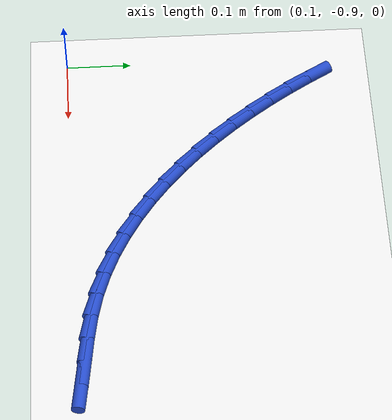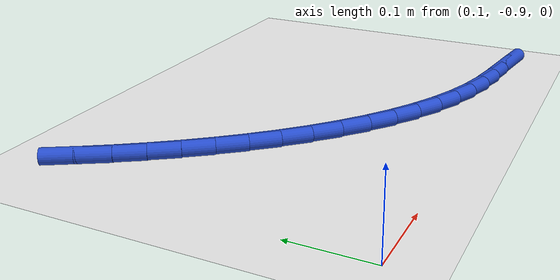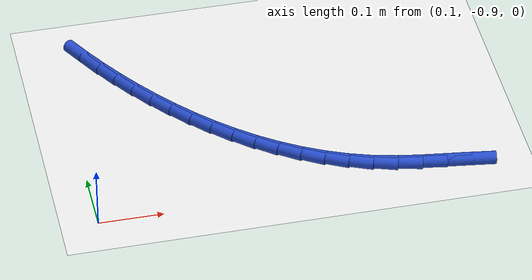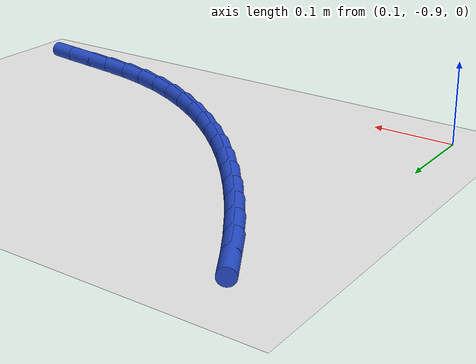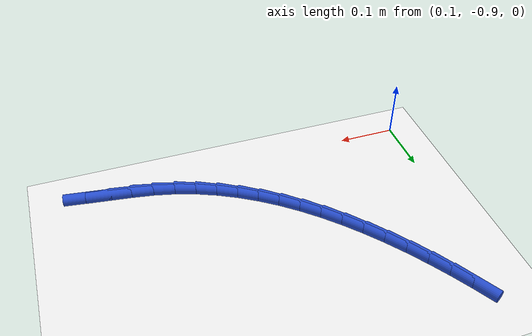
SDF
<sdf version="1.6">
 <world name="default">
  <model name="ground_plane">
   <static>1</static>
   <link name="link">
    <collision name="collision">
     <geometry><plane><normal>0 0 1</normal><size>100 100</size></plane></geometry>
     <surface><friction><ode><mu>100</mu><mu2>50</mu2></ode></friction></surface>
    </collision>
    <visual name="visual">
     <cast_shadows>0</cast_shadows>
     <geometry><plane><normal>0 0 1</normal><size>100 100</size></plane></geometry>
     <material>
      <script><uri>file://media/materials/scripts/gazebo.material</uri><name>Gazebo/WhiteGlow</name></script>
     </material>
    </visual>
   </link>
  </model>
  <model name="line">
   <link name="link_197">
    <pose>0.6735484048971435 -0.8865345235779443 0.01 0 1.57 -0.13792116968464777</pose>
    <collision name="collision">
     <geometry><cylinder><radius>0.01</radius><length>0.08</length></cylinder></geometry>
    </collision>
    <visual name="visual">
     <material>
      <script><name>Gazebo/Blue</name><uri>file://media/materials/scripts/gazebo.material</uri></script>
     </material>
     <geometry><cylinder><radius>0.01</radius><length>0.08</length></cylinder></geometry>
    </visual>
   </link>
   <link name="link_198">
    <pose>0.6367582350109195 -0.8814279597347524 0.01 0 1.57 -0.1325945253674707</pose>
    <collision name="collision">
     <geometry><cylinder><radius>0.01</radius><length>0.08</length></cylinder></geometry>
    </collision>
    <visual name="visual">
     <material>
      <script><name>Gazebo/Blue</name><uri>file://media/materials/scripts/gazebo.material</uri></script>
     </material>
     <geometry><cylinder><radius>0.01</radius><length>0.08</length></cylinder></geometry>
    </visual>
   </link>
   <link name="link_199">
    <pose>0.5997831364971848 -0.8764963286564301 0.01 0 1.57 -0.16704243983490943</pose>
    <collision name="collision">
     <geometry><cylinder><radius>0.01</radius><length>0.08</length></cylinder></geometry>
    </collision>
    <visual name="visual">
     <material>
      <script><name>Gazebo/Blue</name><uri>file://media/materials/scripts/gazebo.material</uri></script>
     </material>
     <geometry><cylinder><radius>0.01</radius><length>0.08</length></cylinder></geometry>
    </visual>
   </link>
   <link name="link_200">
    <pose>0.5631766510700196 -0.8703239755185237 0.01 0 1.57 -0.23980542943282607</pose>
    <collision name="collision">
     <geometry><cylinder><radius>0.01</radius><length>0.08</length></cylinder></geometry>
    </collision>
    <visual name="visual">
     <material>
      <script><name>Gazebo/Blue</name><uri>file://media/materials/scripts/gazebo.material</uri></script>
     </material>
     <geometry><cylinder><radius>0.01</radius><length>0.08</length></cylinder></geometry>
    </visual>
   </link>
   <link name="link_201">
    <pose>0.5274600009713906 -0.8615908799067862 0.01 0 1.57 -0.3247046950337839</pose>
    <collision name="collision">
     <geometry><cylinder><radius>0.01</radius><length>0.08</length></cylinder></geometry>
    </collision>
    <visual name="visual">
     <material>
      <script><name>Gazebo/Blue</name><uri>file://media/materials/scripts/gazebo.material</uri></script>
     </material>
     <geometry><cylinder><radius>0.01</radius><length>0.08</length></cylinder></geometry>
    </visual>
   </link>
   <link name="link_202">
    <pose>0.4928309685022801 -0.8499340911229142 0.01 0 1.57 -0.40545394390285294</pose>
    <collision name="collision">
     <geometry><cylinder><radius>0.01</radius><length>0.08</length></cylinder></geometry>
    </collision>
    <visual name="visual">
     <material>
      <script><name>Gazebo/Blue</name><uri>file://media/materials/scripts/gazebo.material</uri></script>
     </material>
     <geometry><cylinder><radius>0.01</radius><length>0.08</length></cylinder></geometry>
    </visual>
   </link>
   <link name="link_203">
    <pose>0.4593010722643265 -0.835541819049683 0.01 0 1.57 -0.4813083689233251</pose>
    <collision name="collision">
     <geometry><cylinder><radius>0.01</radius><length>0.08</length></cylinder></geometry>
    </collision>
    <visual name="visual">
     <material>
      <script><name>Gazebo/Blue</name><uri>file://media/materials/scripts/gazebo.material</uri></script>
     </material>
     <geometry><cylinder><radius>0.01</radius><length>0.08</length></cylinder></geometry>
    </visual>
   </link>
   <link name="link_204">
    <pose>0.42687959394172387 -0.8186088926841845 0.01 0 1.57 -0.5519998666911693</pose>
    <collision name="collision">
     <geometry><cylinder><radius>0.01</radius><length>0.08</length></cylinder></geometry>
    </collision>
    <visual name="visual">
     <material>
      <script><name>Gazebo/Blue</name><uri>file://media/materials/scripts/gazebo.material</uri></script>
     </material>
     <geometry><cylinder><radius>0.01</radius><length>0.08</length></cylinder></geometry>
    </visual>
   </link>
   <link name="link_205">
    <pose>0.39557581521866625 -0.7993301410235097 0.01 0 1.57 -0.6174988989865954</pose>
    <collision name="collision">
     <geometry><cylinder><radius>0.01</radius><length>0.08</length></cylinder></geometry>
    </collision>
    <visual name="visual">
     <material>
      <script><name>Gazebo/Blue</name><uri>file://media/materials/scripts/gazebo.material</uri></script>
     </material>
     <geometry><cylinder><radius>0.01</radius><length>0.08</length></cylinder></geometry>
    </visual>
   </link>
   <link name="link_206">
    <pose>0.365399017779347 -0.7779003930647498 0.01 0 1.57 -0.677955382249036</pose>
    <collision name="collision">
     <geometry><cylinder><radius>0.01</radius><length>0.08</length></cylinder></geometry>
    </collision>
    <visual name="visual">
     <material>
      <script><name>Gazebo/Blue</name><uri>file://media/materials/scripts/gazebo.material</uri></script>
     </material>
     <geometry><cylinder><radius>0.01</radius><length>0.08</length></cylinder></geometry>
    </visual>
   </link>
   <link name="link_207">
    <pose>0.33635848330796186 -0.7545144778049967 0.01 0 1.57 -0.7336416358899801</pose>
    <collision name="collision">
     <geometry><cylinder><radius>0.01</radius><length>0.08</length></cylinder></geometry>
    </collision>
    <visual name="visual">
     <material>
      <script><name>Gazebo/Blue</name><uri>file://media/materials/scripts/gazebo.material</uri></script>
     </material>
     <geometry><cylinder><radius>0.01</radius><length>0.08</length></cylinder></geometry>
    </visual>
   </link>
   <link name="link_208">
    <pose>0.3084634934887042 -0.7293672242413418 0.01 0 1.57 -0.7849042687086034</pose>
    <collision name="collision">
     <geometry><cylinder><radius>0.01</radius><length>0.08</length></cylinder></geometry>
    </collision>
    <visual name="visual">
     <material>
      <script><name>Gazebo/Blue</name><uri>file://media/materials/scripts/gazebo.material</uri></script>
     </material>
     <geometry><cylinder><radius>0.01</radius><length>0.08</length></cylinder></geometry>
    </visual>
   </link>
   <link name="link_209">
    <pose>0.28172333000576816 -0.7026534613708763 0.01 0 1.57 -0.8321274012578057</pose>
    <collision name="collision">
     <geometry><cylinder><radius>0.01</radius><length>0.08</length></cylinder></geometry>
    </collision>
    <visual name="visual">
     <material>
      <script><name>Gazebo/Blue</name><uri>file://media/materials/scripts/gazebo.material</uri></script>
     </material>
     <geometry><cylinder><radius>0.01</radius><length>0.08</length></cylinder></geometry>
    </visual>
   </link>
   <link name="link_210">
    <pose>0.2561472745433471 -0.6745680181906909 0.01 0 1.57 -0.8757068187087791</pose>
    <collision name="collision">
     <geometry><cylinder><radius>0.01</radius><length>0.08</length></cylinder></geometry>
    </collision>
    <visual name="visual">
     <material>
      <script><name>Gazebo/Blue</name><uri>file://media/materials/scripts/gazebo.material</uri></script>
     </material>
     <geometry><cylinder><radius>0.01</radius><length>0.08</length></cylinder></geometry>
    </visual>
   </link>
   <link name="link_211">
    <pose>0.23174460878563666 -0.6453057236978788 0.01 0 1.57 -0.9160333251854179</pose>
    <collision name="collision">
     <geometry><cylinder><radius>0.01</radius><length>0.08</length></cylinder></geometry>
    </collision>
    <visual name="visual">
     <material>
      <script><name>Gazebo/Blue</name><uri>file://media/materials/scripts/gazebo.material</uri></script>
     </material>
     <geometry><cylinder><radius>0.01</radius><length>0.08</length></cylinder></geometry>
    </visual>
   </link>
   <link name="link_212">
    <pose>0.20852461441683007 -0.6150614068895299 0.01 0 1.57 -0.9534832304704594</pose>
    <collision name="collision">
     <geometry><cylinder><radius>0.01</radius><length>0.08</length></cylinder></geometry>
    </collision>
    <visual name="visual">
     <material>
      <script><name>Gazebo/Blue</name><uri>file://media/materials/scripts/gazebo.material</uri></script>
     </material>
     <geometry><cylinder><radius>0.01</radius><length>0.08</length></cylinder></geometry>
    </visual>
   </link>
   <link name="link_213">
    <pose>0.18649657312112153 -0.5840298967627362 0.01 0 1.57 -0.9884140848856443</pose>
    <collision name="collision">
     <geometry><cylinder><radius>0.01</radius><length>0.08</length></cylinder></geometry>
    </collision>
    <visual name="visual">
     <material>
      <script><name>Gazebo/Blue</name><uri>file://media/materials/scripts/gazebo.material</uri></script>
     </material>
     <geometry><cylinder><radius>0.01</radius><length>0.08</length></cylinder></geometry>
    </visual>
   </link>
   <link name="link_214">
    <pose>0.16566976658270532 -0.552406022314589 0.01 0 1.57 -1.0211641772122417</pose>
    <collision name="collision">
     <geometry><cylinder><radius>0.01</radius><length>0.08</length></cylinder></geometry>
    </collision>
    <visual name="visual">
     <material>
      <script><name>Gazebo/Blue</name><uri>file://media/materials/scripts/gazebo.material</uri></script>
     </material>
     <geometry><cylinder><radius>0.01</radius><length>0.08</length></cylinder></geometry>
    </visual>
   </link>
   <link name="link_215">
    <pose>0.14605347648577482 -0.5203846125421788 0.01 0 1.57 -1.052493438729183</pose>
    <collision name="collision">
     <geometry><cylinder><radius>0.01</radius><length>0.08</length></cylinder></geometry>
    </collision>
    <visual name="visual">
     <material>
      <script><name>Gazebo/Blue</name><uri>file://media/materials/scripts/gazebo.material</uri></script>
     </material>
     <geometry><cylinder><radius>0.01</radius><length>0.08</length></cylinder></geometry>
    </visual>
   </link>
  </model>
 </world>
</sdf>
